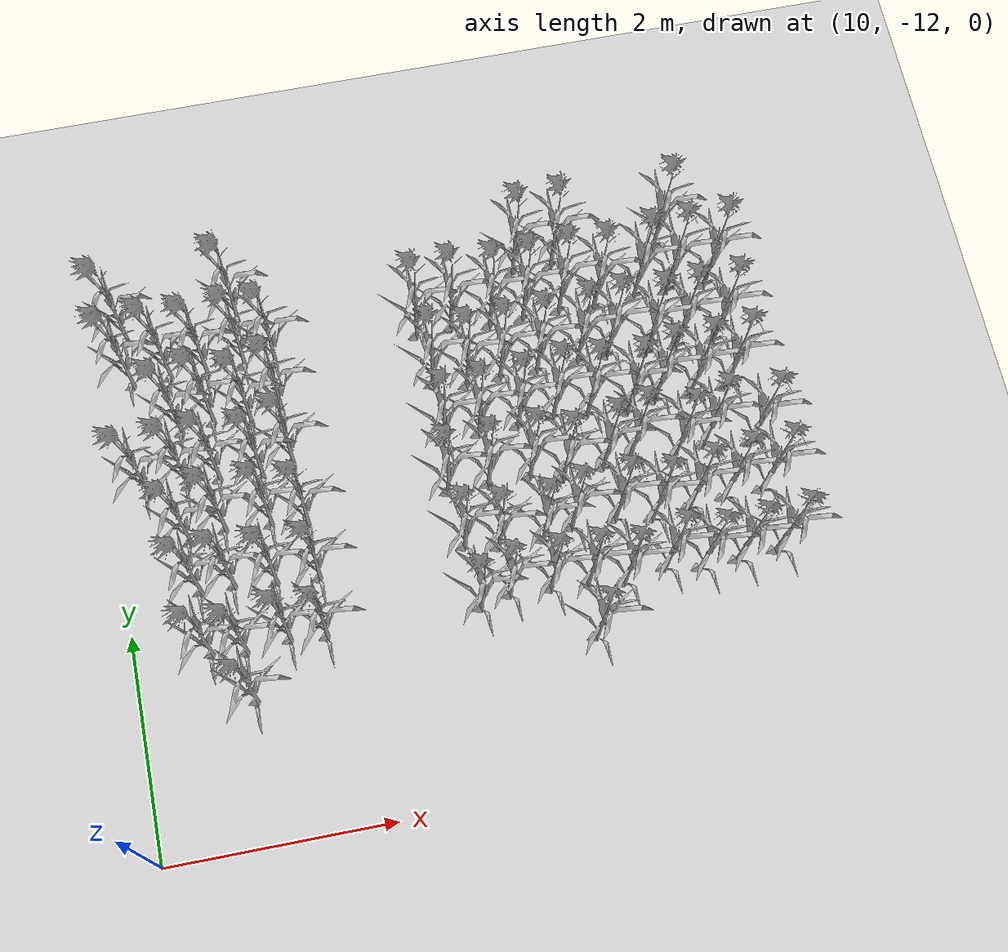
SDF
<sdf version="1.7">
 <world name="farmland_world">
  <model name="ground_plane">
   <static>1</static>
   <link name="link">
    <collision name="collision">
     <geometry><plane><normal>0 0 1</normal><size>40.0 40.0</size></plane></geometry>
     <surface><friction><ode><mu>100</mu><mu2>50</mu2></ode></friction></surface>
    </collision>
    <visual name="visual">
     <cast_shadows>0</cast_shadows>
     <geometry><plane><normal>0 0 1</normal><size>40.0 40.0</size></plane></geometry>
     <material>
      <script><uri>file://media/materials/scripts/gazebo.material</uri><name>Gazebo/Grey</name></script>
     </material>
    </visual>
   </link>
  </model>
  <model name="tree_3_400">
   <static>1</static>
   <link name="link">
    <collision name="collision">
     <geometry><mesh><uri>model://Corn_low_poly/corn.obj</uri><scale>1 1 1</scale></mesh></geometry>
     <surface><friction><ode><mu>100</mu><mu2>50</mu2></ode></friction></surface>
    </collision>
    <visual name="visual">
     <geometry><mesh><uri>model://Corn_low_poly/corn.obj</uri><scale>1 1 1</scale></mesh></geometry>
    </visual>
   </link>
   <pose>10.34264472117641 -7.221243051717082 0 0 0 0</pose>
  </model>
  <model name="tree_3_401">
   <static>1</static>
   <link name="link">
    <collision name="collision">
     <geometry><mesh><uri>model://Corn_low_poly/corn.obj</uri><scale>1 1 1</scale></mesh></geometry>
     <surface><friction><ode><mu>100</mu><mu2>50</mu2></ode></friction></surface>
    </collision>
    <visual name="visual">
     <geometry><mesh><uri>model://Corn_low_poly/corn.obj</uri><scale>1 1 1</scale></mesh></geometry>
    </visual>
   </link>
   <pose>10.338454814239373 -7.66585331338082 0 0 0 0</pose>
  </model>
  <model name="tree_3_403">
   <static>1</static>
   <link name="link">
    <collision name="collision">
     <geometry><mesh><uri>model://Corn_low_poly/corn.obj</uri><scale>1 1 1</scale></mesh></geometry>
     <surface><friction><ode><mu>100</mu><mu2>50</mu2></ode></friction></surface>
    </collision>
    <visual name="visual">
     <geometry><mesh><uri>model://Corn_low_poly/corn.obj</uri><scale>1 1 1</scale></mesh></geometry>
    </visual>
   </link>
   <pose>10.34158025443758 -8.729332318226618 0 0 0 0</pose>
  </model>
  <model name="tree_3_431">
   <static>1</static>
   <link name="link">
    <collision name="collision">
     <geometry><mesh><uri>model://Corn_low_poly/corn.obj</uri><scale>1 1 1</scale></mesh></geometry>
     <surface><friction><ode><mu>100</mu><mu2>50</mu2></ode></friction></surface>
    </collision>
    <visual name="visual">
     <geometry><mesh><uri>model://Corn_low_poly/corn.obj</uri><scale>1 1 1</scale></mesh></geometry>
    </visual>
   </link>
   <pose>10.68484244033813 -7.653272223433387 0 0 0 0</pose>
  </model>
  <model name="tree_3_432">
   <static>1</static>
   <link name="link">
    <collision name="collision">
     <geometry><mesh><uri>model://Corn_low_poly/corn.obj</uri><scale>1 1 1</scale></mesh></geometry>
     <surface><friction><ode><mu>100</mu><mu2>50</mu2></ode></friction></surface>
    </collision>
    <visual name="visual">
     <geometry><mesh><uri>model://Corn_low_poly/corn.obj</uri><scale>1 1 1</scale></mesh></geometry>
    </visual>
   </link>
   <pose>10.710874957975356 -8.20716723866626 0 0 0 0</pose>
  </model>
  <model name="tree_3_433">
   <static>1</static>
   <link name="link">
    <collision name="collision">
     <geometry><mesh><uri>model://Corn_low_poly/corn.obj</uri><scale>1 1 1</scale></mesh></geometry>
     <surface><friction><ode><mu>100</mu><mu2>50</mu2></ode></friction></surface>
    </collision>
    <visual name="visual">
     <geometry><mesh><uri>model://Corn_low_poly/corn.obj</uri><scale>1 1 1</scale></mesh></geometry>
    </visual>
   </link>
   <pose>10.697267703670128 -8.721666832337787 0 0 0 0</pose>
  </model>
  <model name="tree_3_434">
   <static>1</static>
   <link name="link">
    <collision name="collision">
     <geometry><mesh><uri>model://Corn_low_poly/corn.obj</uri><scale>1 1 1</scale></mesh></geometry>
     <surface><friction><ode><mu>100</mu><mu2>50</mu2></ode></friction></surface>
    </collision>
    <visual name="visual">
     <geometry><mesh><uri>model://Corn_low_poly/corn.obj</uri><scale>1 1 1</scale></mesh></geometry>
    </visual>
   </link>
   <pose>10.641527303943821 -9.245394690304623 0 0 0 0</pose>
  </model>
  <model name="tree_3_435">
   <static>1</static>
   <link name="link">
    <collision name="collision">
     <geometry><mesh><uri>model://Corn_low_poly/corn.obj</uri><scale>1 1 1</scale></mesh></geometry>
     <surface><friction><ode><mu>100</mu><mu2>50</mu2></ode></friction></surface>
    </collision>
    <visual name="visual">
     <geometry><mesh><uri>model://Corn_low_poly/corn.obj</uri><scale>1 1 1</scale></mesh></geometry>
    </visual>
   </link>
   <pose>10.667570356438791 -9.715934877916279 0 0 0 0</pose>
  </model>
  <model name="tree_3_436">
   <static>1</static>
   <link name="link">
    <collision name="collision">
     <geometry><mesh><uri>model://Corn_low_poly/corn.obj</uri><scale>1 1 1</scale></mesh></geometry>
     <surface><friction><ode><mu>100</mu><mu2>50</mu2></ode></friction></surface>
    </collision>
    <visual name="visual">
     <geometry><mesh><uri>model://Corn_low_poly/corn.obj</uri><scale>1 1 1</scale></mesh></geometry>
    </visual>
   </link>
   <pose>10.686186014860024 -10.279513157542569 0 0 0 0</pose>
  </model>
  <model name="tree_3_461">
   <static>1</static>
   <link name="link">
    <collision name="collision">
     <geometry><mesh><uri>model://Corn_low_poly/corn.obj</uri><scale>1 1 1</scale></mesh></geometry>
     <surface><friction><ode><mu>100</mu><mu2>50</mu2></ode></friction></surface>
    </collision>
    <visual name="visual">
     <geometry><mesh><uri>model://Corn_low_poly/corn.obj</uri><scale>1 1 1</scale></mesh></geometry>
    </visual>
   </link>
   <pose>11.018049860431471 -7.689469624449267 0 0 0 0</pose>
  </model>
  <model name="tree_3_462">
   <static>1</static>
   <link name="link">
    <collision name="collision">
     <geometry><mesh><uri>model://Corn_low_poly/corn.obj</uri><scale>1 1 1</scale></mesh></geometry>
     <surface><friction><ode><mu>100</mu><mu2>50</mu2></ode></friction></surface>
    </collision>
    <visual name="visual">
     <geometry><mesh><uri>model://Corn_low_poly/corn.obj</uri><scale>1 1 1</scale></mesh></geometry>
    </visual>
   </link>
   <pose>11.006267011523752 -8.163785673835847 0 0 0 0</pose>
  </model>
  <model name="tree_3_463">
   <static>1</static>
   <link name="link">
    <collision name="collision">
     <geometry><mesh><uri>model://Corn_low_poly/corn.obj</uri><scale>1 1 1</scale></mesh></geometry>
     <surface><friction><ode><mu>100</mu><mu2>50</mu2></ode></friction></surface>
    </collision>
    <visual name="visual">
     <geometry><mesh><uri>model://Corn_low_poly/corn.obj</uri><scale>1 1 1</scale></mesh></geometry>
    </visual>
   </link>
   <pose>10.982426069605596 -8.712588871135154 0 0 0 0</pose>
  </model>
  <model name="tree_3_464">
   <static>1</static>
   <link name="link">
    <collision name="collision">
     <geometry><mesh><uri>model://Corn_low_poly/corn.obj</uri><scale>1 1 1</scale></mesh></geometry>
     <surface><friction><ode><mu>100</mu><mu2>50</mu2></ode></friction></surface>
    </collision>
    <visual name="visual">
     <geometry><mesh><uri>model://Corn_low_poly/corn.obj</uri><scale>1 1 1</scale></mesh></geometry>
    </visual>
   </link>
   <pose>10.962684201638673 -9.192205985252677 0 0 0 0</pose>
  </model>
  <model name="tree_3_465">
   <static>1</static>
   <link name="link">
    <collision name="collision">
     <geometry><mesh><uri>model://Corn_low_poly/corn.obj</uri><scale>1 1 1</scale></mesh></geometry>
     <surface><friction><ode><mu>100</mu><mu2>50</mu2></ode></friction></surface>
    </collision>
    <visual name="visual">
     <geometry><mesh><uri>model://Corn_low_poly/corn.obj</uri><scale>1 1 1</scale></mesh></geometry>
    </visual>
   </link>
   <pose>10.963121371407512 -9.716608719569937 0 0 0 0</pose>
  </model>
  <model name="tree_3_466">
   <static>1</static>
   <link name="link">
    <collision name="collision">
     <geometry><mesh><uri>model://Corn_low_poly/corn.obj</uri><scale>1 1 1</scale></mesh></geometry>
     <surface><friction><ode><mu>100</mu><mu2>50</mu2></ode></friction></surface>
    </collision>
    <visual name="visual">
     <geometry><mesh><uri>model://Corn_low_poly/corn.obj</uri><scale>1 1 1</scale></mesh></geometry>
    </visual>
   </link>
   <pose>10.982357116105007 -10.320443931904043 0 0 0 0</pose>
  </model>
  <model name="tree_3_467">
   <static>1</static>
   <link name="link">
    <collision name="collision">
     <geometry><mesh><uri>model://Corn_low_poly/corn.obj</uri><scale>1 1 1</scale></mesh></geometry>
     <surface><friction><ode><mu>100</mu><mu2>50</mu2></ode></friction></surface>
    </collision>
    <visual name="visual">
     <geometry><mesh><uri>model://Corn_low_poly/corn.obj</uri><scale>1 1 1</scale></mesh></geometry>
    </visual>
   </link>
   <pose>11.004182899708768 -10.760204597092526 0 0 0 0</pose>
  </model>
  <model name="tree_3_490">
   <static>1</static>
   <link name="link">
    <collision name="collision">
     <geometry><mesh><uri>model://Corn_low_poly/corn.obj</uri><scale>1 1 1</scale></mesh></geometry>
     <surface><friction><ode><mu>100</mu><mu2>50</mu2></ode></friction></surface>
    </collision>
    <visual name="visual">
     <geometry><mesh><uri>model://Corn_low_poly/corn.obj</uri><scale>1 1 1</scale></mesh></geometry>
    </visual>
   </link>
   <pose>11.36624414504541 -7.196506146457356 0 0 0 0</pose>
  </model>
  <model name="tree_3_491">
   <static>1</static>
   <link name="link">
    <collision name="collision">
     <geometry><mesh><uri>model://Corn_low_poly/corn.obj</uri><scale>1 1 1</scale></mesh></geometry>
     <surface><friction><ode><mu>100</mu><mu2>50</mu2></ode></friction></surface>
    </collision>
    <visual name="visual">
     <geometry><mesh><uri>model://Corn_low_poly/corn.obj</uri><scale>1 1 1</scale></mesh></geometry>
    </visual>
   </link>
   <pose>11.364293158134222 -7.6664493016286155 0 0 0 0</pose>
  </model>
  <model name="tree_3_492">
   <static>1</static>
   <link name="link">
    <collision name="collision">
     <geometry><mesh><uri>model://Corn_low_poly/corn.obj</uri><scale>1 1 1</scale></mesh></geometry>
     <surface><friction><ode><mu>100</mu><mu2>50</mu2></ode></friction></surface>
    </collision>
    <visual name="visual">
     <geometry><mesh><uri>model://Corn_low_poly/corn.obj</uri><scale>1 1 1</scale></mesh></geometry>
    </visual>
   </link>
   <pose>11.34295017642501 -8.246571486949625 0 0 0 0</pose>
  </model>
  <model name="tree_3_493">
   <static>1</static>
   <link name="link">
    <collision name="collision">
     <geometry><mesh><uri>model://Corn_low_poly/corn.obj</uri><scale>1 1 1</scale></mesh></geometry>
     <surface><friction><ode><mu>100</mu><mu2>50</mu2></ode></friction></surface>
    </collision>
    <visual name="visual">
     <geometry><mesh><uri>model://Corn_low_poly/corn.obj</uri><scale>1 1 1</scale></mesh></geometry>
    </visual>
   </link>
   <pose>11.364372571572034 -8.768462655058821 0 0 0 0</pose>
  </model>
  <model name="tree_3_494">
   <static>1</static>
   <link name="link">
    <collision name="collision">
     <geometry><mesh><uri>model://Corn_low_poly/corn.obj</uri><scale>1 1 1</scale></mesh></geometry>
     <surface><friction><ode><mu>100</mu><mu2>50</mu2></ode></friction></surface>
    </collision>
    <visual name="visual">
     <geometry><mesh><uri>model://Corn_low_poly/corn.obj</uri><scale>1 1 1</scale></mesh></geometry>
    </visual>
   </link>
   <pose>11.370045885801959 -9.220711626090209 0 0 0 0</pose>
  </model>
  <model name="tree_3_495">
   <static>1</static>
   <link name="link">
    <collision name="collision">
     <geometry><mesh><uri>model://Corn_low_poly/corn.obj</uri><scale>1 1 1</scale></mesh></geometry>
     <surface><friction><ode><mu>100</mu><mu2>50</mu2></ode></friction></surface>
    </collision>
    <visual name="visual">
     <geometry><mesh><uri>model://Corn_low_poly/corn.obj</uri><scale>1 1 1</scale></mesh></geometry>
    </visual>
   </link>
   <pose>11.332500728271157 -9.758508030954355 0 0 0 0</pose>
  </model>
  <model name="tree_3_496">
   <static>1</static>
   <link name="link">
    <collision name="collision">
     <geometry><mesh><uri>model://Corn_low_poly/corn.obj</uri><scale>1 1 1</scale></mesh></geometry>
     <surface><friction><ode><mu>100</mu><mu2>50</mu2></ode></friction></surface>
    </collision>
    <visual name="visual">
     <geometry><mesh><uri>model://Corn_low_poly/corn.obj</uri><scale>1 1 1</scale></mesh></geometry>
    </visual>
   </link>
   <pose>11.367734395144145 -10.282857870187813 0 0 0 0</pose>
  </model>
  <model name="tree_3_521">
   <static>1</static>
   <link name="link">
    <collision name="collision">
     <geometry><mesh><uri>model://Corn_low_poly/corn.obj</uri><scale>1 1 1</scale></mesh></geometry>
     <surface><friction><ode><mu>100</mu><mu2>50</mu2></ode></friction></surface>
    </collision>
    <visual name="visual">
     <geometry><mesh><uri>model://Corn_low_poly/corn.obj</uri><scale>1 1 1</scale></mesh></geometry>
    </visual>
   </link>
   <pose>11.64435746285812 -7.693616378816136 0 0 0 0</pose>
  </model>
  <model name="tree_3_522">
   <static>1</static>
   <link name="link">
    <collision name="collision">
     <geometry><mesh><uri>model://Corn_low_poly/corn.obj</uri><scale>1 1 1</scale></mesh></geometry>
     <surface><friction><ode><mu>100</mu><mu2>50</mu2></ode></friction></surface>
    </collision>
    <visual name="visual">
     <geometry><mesh><uri>model://Corn_low_poly/corn.obj</uri><scale>1 1 1</scale></mesh></geometry>
    </visual>
   </link>
   <pose>11.627909985855867 -8.173665759159391 0 0 0 0</pose>
  </model>
  <model name="tree_3_523">
   <static>1</static>
   <link name="link">
    <collision name="collision">
     <geometry><mesh><uri>model://Corn_low_poly/corn.obj</uri><scale>1 1 1</scale></mesh></geometry>
     <surface><friction><ode><mu>100</mu><mu2>50</mu2></ode></friction></surface>
    </collision>
    <visual name="visual">
     <geometry><mesh><uri>model://Corn_low_poly/corn.obj</uri><scale>1 1 1</scale></mesh></geometry>
    </visual>
   </link>
   <pose>11.64689395640152 -8.678714293904482 0 0 0 0</pose>
  </model>
  <model name="tree_3_524">
   <static>1</static>
   <link name="link">
    <collision name="collision">
     <geometry><mesh><uri>model://Corn_low_poly/corn.obj</uri><scale>1 1 1</scale></mesh></geometry>
     <surface><friction><ode><mu>100</mu><mu2>50</mu2></ode></friction></surface>
    </collision>
    <visual name="visual">
     <geometry><mesh><uri>model://Corn_low_poly/corn.obj</uri><scale>1 1 1</scale></mesh></geometry>
    </visual>
   </link>
   <pose>11.68829046653136 -9.277292054085517 0 0 0 0</pose>
  </model>
  <model name="tree_3_525">
   <static>1</static>
   <link name="link">
    <collision name="collision">
     <geometry><mesh><uri>model://Corn_low_poly/corn.obj</uri><scale>1 1 1</scale></mesh></geometry>
     <surface><friction><ode><mu>100</mu><mu2>50</mu2></ode></friction></surface>
    </collision>
    <visual name="visual">
     <geometry><mesh><uri>model://Corn_low_poly/corn.obj</uri><scale>1 1 1</scale></mesh></geometry>
    </visual>
   </link>
   <pose>11.707902461020238 -9.784325769079132 0 0 0 0</pose>
  </model>
  <model name="tree_3_526">
   <static>1</static>
   <link name="link">
    <collision name="collision">
     <geometry><mesh><uri>model://Corn_low_poly/corn.obj</uri><scale>1 1 1</scale></mesh></geometry>
     <surface><friction><ode><mu>100</mu><mu2>50</mu2></ode></friction></surface>
    </collision>
    <visual name="visual">
     <geometry><mesh><uri>model://Corn_low_poly/corn.obj</uri><scale>1 1 1</scale></mesh></geometry>
    </visual>
   </link>
   <pose>11.68536356628521 -10.315217088517244 0 0 0 0</pose>
  </model>
  <model name="tree_3_551">
   <static>1</static>
   <link name="link">
    <collision name="collision">
     <geometry><mesh><uri>model://Corn_low_poly/corn.obj</uri><scale>1 1 1</scale></mesh></geometry>
     <surface><friction><ode><mu>100</mu><mu2>50</mu2></ode></friction></surface>
    </collision>
    <visual name="visual">
     <geometry><mesh><uri>model://Corn_low_poly/corn.obj</uri><scale>1 1 1</scale></mesh></geometry>
    </visual>
   </link>
   <pose>12.964564481734902 -7.667422720420422 0 0 0 0</pose>
  </model>
  <model name="tree_3_552">
   <static>1</static>
   <link name="link">
    <collision name="collision">
     <geometry><mesh><uri>model://Corn_low_poly/corn.obj</uri><scale>1 1 1</scale></mesh></geometry>
     <surface><friction><ode><mu>100</mu><mu2>50</mu2></ode></friction></surface>
    </collision>
    <visual name="visual">
     <geometry><mesh><uri>model://Corn_low_poly/corn.obj</uri><scale>1 1 1</scale></mesh></geometry>
    </visual>
   </link>
   <pose>13.017679959994837 -8.17138943899508 0 0 0 0</pose>
  </model>
  <model name="tree_3_553">
   <static>1</static>
   <link name="link">
    <collision name="collision">
     <geometry><mesh><uri>model://Corn_low_poly/corn.obj</uri><scale>1 1 1</scale></mesh></geometry>
     <surface><friction><ode><mu>100</mu><mu2>50</mu2></ode></friction></surface>
    </collision>
    <visual name="visual">
     <geometry><mesh><uri>model://Corn_low_poly/corn.obj</uri><scale>1 1 1</scale></mesh></geometry>
    </visual>
   </link>
   <pose>13.016828496132378 -8.73689489399794 0 0 0 0</pose>
  </model>
  <model name="tree_3_554">
   <static>1</static>
   <link name="link">
    <collision name="collision">
     <geometry><mesh><uri>model://Corn_low_poly/corn.obj</uri><scale>1 1 1</scale></mesh></geometry>
     <surface><friction><ode><mu>100</mu><mu2>50</mu2></ode></friction></surface>
    </collision>
    <visual name="visual">
     <geometry><mesh><uri>model://Corn_low_poly/corn.obj</uri><scale>1 1 1</scale></mesh></geometry>
    </visual>
   </link>
   <pose>12.96048467094122 -9.213028866033435 0 0 0 0</pose>
  </model>
  <model name="tree_3_555">
   <static>1</static>
   <link name="link">
    <collision name="collision">
     <geometry><mesh><uri>model://Corn_low_poly/corn.obj</uri><scale>1 1 1</scale></mesh></geometry>
     <surface><friction><ode><mu>100</mu><mu2>50</mu2></ode></friction></surface>
    </collision>
    <visual name="visual">
     <geometry><mesh><uri>model://Corn_low_poly/corn.obj</uri><scale>1 1 1</scale></mesh></geometry>
    </visual>
   </link>
   <pose>13.008731725089232 -9.739149671609507 0 0 0 0</pose>
  </model>
  <model name="tree_3_556">
   <static>1</static>
   <link name="link">
    <collision name="collision">
     <geometry><mesh><uri>model://Corn_low_poly/corn.obj</uri><scale>1 1 1</scale></mesh></geometry>
     <surface><friction><ode><mu>100</mu><mu2>50</mu2></ode></friction></surface>
    </collision>
    <visual name="visual">
     <geometry><mesh><uri>model://Corn_low_poly/corn.obj</uri><scale>1 1 1</scale></mesh></geometry>
    </visual>
   </link>
   <pose>13.042674908653852 -10.31338856702868 0 0 0 0</pose>
  </model>
  <model name="tree_3_581">
   <static>1</static>
   <link name="link">
    <collision name="collision">
     <geometry><mesh><uri>model://Corn_low_poly/corn.obj</uri><scale>1 1 1</scale></mesh></geometry>
     <surface><friction><ode><mu>100</mu><mu2>50</mu2></ode></friction></surface>
    </collision>
    <visual name="visual">
     <geometry><mesh><uri>model://Corn_low_poly/corn.obj</uri><scale>1 1 1</scale></mesh></geometry>
    </visual>
   </link>
   <pose>13.290247540325225 -7.6526682942034565 0 0 0 0</pose>
  </model>
  <model name="tree_3_582">
   <static>1</static>
   <link name="link">
    <collision name="collision">
     <geometry><mesh><uri>model://Corn_low_poly/corn.obj</uri><scale>1 1 1</scale></mesh></geometry>
     <surface><friction><ode><mu>100</mu><mu2>50</mu2></ode></friction></surface>
    </collision>
    <visual name="visual">
     <geometry><mesh><uri>model://Corn_low_poly/corn.obj</uri><scale>1 1 1</scale></mesh></geometry>
    </visual>
   </link>
   <pose>13.323938945844505 -8.238764099997011 0 0 0 0</pose>
  </model>
  <model name="tree_3_583">
   <static>1</static>
   <link name="link">
    <collision name="collision">
     <geometry><mesh><uri>model://Corn_low_poly/corn.obj</uri><scale>1 1 1</scale></mesh></geometry>
     <surface><friction><ode><mu>100</mu><mu2>50</mu2></ode></friction></surface>
    </collision>
    <visual name="visual">
     <geometry><mesh><uri>model://Corn_low_poly/corn.obj</uri><scale>1 1 1</scale></mesh></geometry>
    </visual>
   </link>
   <pose>13.338754682785858 -8.724260765500494 0 0 0 0</pose>
  </model>
  <model name="tree_3_584">
   <static>1</static>
   <link name="link">
    <collision name="collision">
     <geometry><mesh><uri>model://Corn_low_poly/corn.obj</uri><scale>1 1 1</scale></mesh></geometry>
     <surface><friction><ode><mu>100</mu><mu2>50</mu2></ode></friction></surface>
    </collision>
    <visual name="visual">
     <geometry><mesh><uri>model://Corn_low_poly/corn.obj</uri><scale>1 1 1</scale></mesh></geometry>
    </visual>
   </link>
   <pose>13.327162672157636 -9.208893045606827 0 0 0 0</pose>
  </model>
  <model name="tree_3_585">
   <static>1</static>
   <link name="link">
    <collision name="collision">
     <geometry><mesh><uri>model://Corn_low_poly/corn.obj</uri><scale>1 1 1</scale></mesh></geometry>
     <surface><friction><ode><mu>100</mu><mu2>50</mu2></ode></friction></surface>
    </collision>
    <visual name="visual">
     <geometry><mesh><uri>model://Corn_low_poly/corn.obj</uri><scale>1 1 1</scale></mesh></geometry>
    </visual>
   </link>
   <pose>13.301988986498737 -9.80278750898337 0 0 0 0</pose>
  </model>
  <model name="tree_3_586">
   <static>1</static>
   <link name="link">
    <collision name="collision">
     <geometry><mesh><uri>model://Corn_low_poly/corn.obj</uri><scale>1 1 1</scale></mesh></geometry>
     <surface><friction><ode><mu>100</mu><mu2>50</mu2></ode></friction></surface>
    </collision>
    <visual name="visual">
     <geometry><mesh><uri>model://Corn_low_poly/corn.obj</uri><scale>1 1 1</scale></mesh></geometry>
    </visual>
   </link>
   <pose>13.31198597607421 -10.245694360863732 0 0 0 0</pose>
  </model>
  <model name="tree_3_611">
   <static>1</static>
   <link name="link">
    <collision name="collision">
     <geometry><mesh><uri>model://Corn_low_poly/corn.obj</uri><scale>1 1 1</scale></mesh></geometry>
     <surface><friction><ode><mu>100</mu><mu2>50</mu2></ode></friction></surface>
    </collision>
    <visual name="visual">
     <geometry><mesh><uri>model://Corn_low_poly/corn.obj</uri><scale>1 1 1</scale></mesh></geometry>
    </visual>
   </link>
   <pose>13.646250896247773 -7.694283359344921 0 0 0 0</pose>
  </model>
  <model name="tree_3_612">
   <static>1</static>
   <link name="link">
    <collision name="collision">
     <geometry><mesh><uri>model://Corn_low_poly/corn.obj</uri><scale>1 1 1</scale></mesh></geometry>
     <surface><friction><ode><mu>100</mu><mu2>50</mu2></ode></friction></surface>
    </collision>
    <visual name="visual">
     <geometry><mesh><uri>model://Corn_low_poly/corn.obj</uri><scale>1 1 1</scale></mesh></geometry>
    </visual>
   </link>
   <pose>13.638435416798966 -8.219299226513263 0 0 0 0</pose>
  </model>
  <model name="tree_3_613">
   <static>1</static>
   <link name="link">
    <collision name="collision">
     <geometry><mesh><uri>model://Corn_low_poly/corn.obj</uri><scale>1 1 1</scale></mesh></geometry>
     <surface><friction><ode><mu>100</mu><mu2>50</mu2></ode></friction></surface>
    </collision>
    <visual name="visual">
     <geometry><mesh><uri>model://Corn_low_poly/corn.obj</uri><scale>1 1 1</scale></mesh></geometry>
    </visual>
   </link>
   <pose>13.701128399210944 -8.715760375651206 0 0 0 0</pose>
  </model>
  <model name="tree_3_614">
   <static>1</static>
   <link name="link">
    <collision name="collision">
     <geometry><mesh><uri>model://Corn_low_poly/corn.obj</uri><scale>1 1 1</scale></mesh></geometry>
     <surface><friction><ode><mu>100</mu><mu2>50</mu2></ode></friction></surface>
    </collision>
    <visual name="visual">
     <geometry><mesh><uri>model://Corn_low_poly/corn.obj</uri><scale>1 1 1</scale></mesh></geometry>
    </visual>
   </link>
   <pose>13.710745441863676 -9.20535531502973 0 0 0 0</pose>
  </model>
  <model name="tree_3_615">
   <static>1</static>
   <link name="link">
    <collision name="collision">
     <geometry><mesh><uri>model://Corn_low_poly/corn.obj</uri><scale>1 1 1</scale></mesh></geometry>
     <surface><friction><ode><mu>100</mu><mu2>50</mu2></ode></friction></surface>
    </collision>
    <visual name="visual">
     <geometry><mesh><uri>model://Corn_low_poly/corn.obj</uri><scale>1 1 1</scale></mesh></geometry>
    </visual>
   </link>
   <pose>13.704411846305241 -9.805895327092637 0 0 0 0</pose>
  </model>
  <model name="tree_3_616">
   <static>1</static>
   <link name="link">
    <collision name="collision">
     <geometry><mesh><uri>model://Corn_low_poly/corn.obj</uri><scale>1 1 1</scale></mesh></geometry>
     <surface><friction><ode><mu>100</mu><mu2>50</mu2></ode></friction></surface>
    </collision>
    <visual name="visual">
     <geometry><mesh><uri>model://Corn_low_poly/corn.obj</uri><scale>1 1 1</scale></mesh></geometry>
    </visual>
   </link>
   <pose>13.675825442952334 -10.260998069643792 0 0 0 0</pose>
  </model>
  <model name="tree_3_640">
   <static>1</static>
   <link name="link">
    <collision name="collision">
     <geometry><mesh><uri>model://Corn_low_poly/corn.obj</uri><scale>1 1 1</scale></mesh></geometry>
     <surface><friction><ode><mu>100</mu><mu2>50</mu2></ode></friction></surface>
    </collision>
    <visual name="visual">
     <geometry><mesh><uri>model://Corn_low_poly/corn.obj</uri><scale>1 1 1</scale></mesh></geometry>
    </visual>
   </link>
   <pose>13.959347089761716 -7.210024211740098 0 0 0 0</pose>
  </model>
  <model name="tree_3_641">
   <static>1</static>
   <link name="link">
    <collision name="collision">
     <geometry><mesh><uri>model://Corn_low_poly/corn.obj</uri><scale>1 1 1</scale></mesh></geometry>
     <surface><friction><ode><mu>100</mu><mu2>50</mu2></ode></friction></surface>
    </collision>
    <visual name="visual">
     <geometry><mesh><uri>model://Corn_low_poly/corn.obj</uri><scale>1 1 1</scale></mesh></geometry>
    </visual>
   </link>
   <pose>13.95903469012038 -7.686479464057294 0 0 0 0</pose>
  </model>
  <model name="tree_3_642">
   <static>1</static>
   <link name="link">
    <collision name="collision">
     <geometry><mesh><uri>model://Corn_low_poly/corn.obj</uri><scale>1 1 1</scale></mesh></geometry>
     <surface><friction><ode><mu>100</mu><mu2>50</mu2></ode></friction></surface>
    </collision>
    <visual name="visual">
     <geometry><mesh><uri>model://Corn_low_poly/corn.obj</uri><scale>1 1 1</scale></mesh></geometry>
    </visual>
   </link>
   <pose>13.981109976076516 -8.218290914910323 0 0 0 0</pose>
  </model>
  <model name="tree_3_643">
   <static>1</static>
   <link name="link">
    <collision name="collision">
     <geometry><mesh><uri>model://Corn_low_poly/corn.obj</uri><scale>1 1 1</scale></mesh></geometry>
     <surface><friction><ode><mu>100</mu><mu2>50</mu2></ode></friction></surface>
    </collision>
    <visual name="visual">
     <geometry><mesh><uri>model://Corn_low_poly/corn.obj</uri><scale>1 1 1</scale></mesh></geometry>
    </visual>
   </link>
   <pose>14.035019319053362 -8.684935278517392 0 0 0 0</pose>
  </model>
  <model name="tree_3_644">
   <static>1</static>
   <link name="link">
    <collision name="collision">
     <geometry><mesh><uri>model://Corn_low_poly/corn.obj</uri><scale>1 1 1</scale></mesh></geometry>
     <surface><friction><ode><mu>100</mu><mu2>50</mu2></ode></friction></surface>
    </collision>
    <visual name="visual">
     <geometry><mesh><uri>model://Corn_low_poly/corn.obj</uri><scale>1 1 1</scale></mesh></geometry>
    </visual>
   </link>
   <pose>13.996312655384688 -9.287751214889113 0 0 0 0</pose>
  </model>
  <model name="tree_3_645">
   <static>1</static>
   <link name="link">
    <collision name="collision">
     <geometry><mesh><uri>model://Corn_low_poly/corn.obj</uri><scale>1 1 1</scale></mesh></geometry>
     <surface><friction><ode><mu>100</mu><mu2>50</mu2></ode></friction></surface>
    </collision>
    <visual name="visual">
     <geometry><mesh><uri>model://Corn_low_poly/corn.obj</uri><scale>1 1 1</scale></mesh></geometry>
    </visual>
   </link>
   <pose>13.972566156101129 -9.745649499598892 0 0 0 0</pose>
  </model>
  <model name="tree_3_646">
   <static>1</static>
   <link name="link">
    <collision name="collision">
     <geometry><mesh><uri>model://Corn_low_poly/corn.obj</uri><scale>1 1 1</scale></mesh></geometry>
     <surface><friction><ode><mu>100</mu><mu2>50</mu2></ode></friction></surface>
    </collision>
    <visual name="visual">
     <geometry><mesh><uri>model://Corn_low_poly/corn.obj</uri><scale>1 1 1</scale></mesh></geometry>
    </visual>
   </link>
   <pose>14.004347488269842 -10.278903498000185 0 0 0 0</pose>
  </model>
  <model name="tree_3_647">
   <static>1</static>
   <link name="link">
    <collision name="collision">
     <geometry><mesh><uri>model://Corn_low_poly/corn.obj</uri><scale>1 1 1</scale></mesh></geometry>
     <surface><friction><ode><mu>100</mu><mu2>50</mu2></ode></friction></surface>
    </collision>
    <visual name="visual">
     <geometry><mesh><uri>model://Corn_low_poly/corn.obj</uri><scale>1 1 1</scale></mesh></geometry>
    </visual>
   </link>
   <pose>13.973767653225972 -10.754216960358498 0 0 0 0</pose>
  </model>
  <model name="tree_3_670">
   <static>1</static>
   <link name="link">
    <collision name="collision">
     <geometry><mesh><uri>model://Corn_low_poly/corn.obj</uri><scale>1 1 1</scale></mesh></geometry>
     <surface><friction><ode><mu>100</mu><mu2>50</mu2></ode></friction></surface>
    </collision>
    <visual name="visual">
     <geometry><mesh><uri>model://Corn_low_poly/corn.obj</uri><scale>1 1 1</scale></mesh></geometry>
    </visual>
   </link>
   <pose>14.324815084923587 -7.207278004294882 0 0 0 0</pose>
  </model>
  <model name="tree_3_671">
   <static>1</static>
   <link name="link">
    <collision name="collision">
     <geometry><mesh><uri>model://Corn_low_poly/corn.obj</uri><scale>1 1 1</scale></mesh></geometry>
     <surface><friction><ode><mu>100</mu><mu2>50</mu2></ode></friction></surface>
    </collision>
    <visual name="visual">
     <geometry><mesh><uri>model://Corn_low_poly/corn.obj</uri><scale>1 1 1</scale></mesh></geometry>
    </visual>
   </link>
   <pose>14.303166019476693 -7.669747987099972 0 0 0 0</pose>
  </model>
  <model name="tree_3_672">
   <static>1</static>
   <link name="link">
    <collision name="collision">
     <geometry><mesh><uri>model://Corn_low_poly/corn.obj</uri><scale>1 1 1</scale></mesh></geometry>
     <surface><friction><ode><mu>100</mu><mu2>50</mu2></ode></friction></surface>
    </collision>
    <visual name="visual">
     <geometry><mesh><uri>model://Corn_low_poly/corn.obj</uri><scale>1 1 1</scale></mesh></geometry>
    </visual>
   </link>
   <pose>14.363687716419742 -8.200330085312922 0 0 0 0</pose>
  </model>
  <model name="tree_3_673">
   <static>1</static>
   <link name="link">
    <collision name="collision">
     <geometry><mesh><uri>model://Corn_low_poly/corn.obj</uri><scale>1 1 1</scale></mesh></geometry>
     <surface><friction><ode><mu>100</mu><mu2>50</mu2></ode></friction></surface>
    </collision>
    <visual name="visual">
     <geometry><mesh><uri>model://Corn_low_poly/corn.obj</uri><scale>1 1 1</scale></mesh></geometry>
    </visual>
   </link>
   <pose>14.343422140808574 -8.723133120603272 0 0 0 0</pose>
  </model>
  <model name="tree_3_674">
   <static>1</static>
   <link name="link">
    <collision name="collision">
     <geometry><mesh><uri>model://Corn_low_poly/corn.obj</uri><scale>1 1 1</scale></mesh></geometry>
     <surface><friction><ode><mu>100</mu><mu2>50</mu2></ode></friction></surface>
    </collision>
    <visual name="visual">
     <geometry><mesh><uri>model://Corn_low_poly/corn.obj</uri><scale>1 1 1</scale></mesh></geometry>
    </visual>
   </link>
   <pose>14.371612547708345 -9.248051012577301 0 0 0 0</pose>
  </model>
  <model name="tree_3_675">
   <static>1</static>
   <link name="link">
    <collision name="collision">
     <geometry><mesh><uri>model://Corn_low_poly/corn.obj</uri><scale>1 1 1</scale></mesh></geometry>
     <surface><friction><ode><mu>100</mu><mu2>50</mu2></ode></friction></surface>
    </collision>
    <visual name="visual">
     <geometry><mesh><uri>model://Corn_low_poly/corn.obj</uri><scale>1 1 1</scale></mesh></geometry>
    </visual>
   </link>
   <pose>14.369406891385546 -9.741943633842908 0 0 0 0</pose>
  </model>
  <model name="tree_3_676">
   <static>1</static>
   <link name="link">
    <collision name="collision">
     <geometry><mesh><uri>model://Corn_low_poly/corn.obj</uri><scale>1 1 1</scale></mesh></geometry>
     <surface><friction><ode><mu>100</mu><mu2>50</mu2></ode></friction></surface>
    </collision>
    <visual name="visual">
     <geometry><mesh><uri>model://Corn_low_poly/corn.obj</uri><scale>1 1 1</scale></mesh></geometry>
    </visual>
   </link>
   <pose>14.317653929918178 -10.325140877377999 0 0 0 0</pose>
  </model>
  <model name="tree_3_701">
   <static>1</static>
   <link name="link">
    <collision name="collision">
     <geometry><mesh><uri>model://Corn_low_poly/corn.obj</uri><scale>1 1 1</scale></mesh></geometry>
     <surface><friction><ode><mu>100</mu><mu2>50</mu2></ode></friction></surface>
    </collision>
    <visual name="visual">
     <geometry><mesh><uri>model://Corn_low_poly/corn.obj</uri><scale>1 1 1</scale></mesh></geometry>
    </visual>
   </link>
   <pose>14.6254849211013 -7.701689486231858 0 0 0 0</pose>
  </model>
  <model name="tree_3_702">
   <static>1</static>
   <link name="link">
    <collision name="collision">
     <geometry><mesh><uri>model://Corn_low_poly/corn.obj</uri><scale>1 1 1</scale></mesh></geometry>
     <surface><friction><ode><mu>100</mu><mu2>50</mu2></ode></friction></surface>
    </collision>
    <visual name="visual">
     <geometry><mesh><uri>model://Corn_low_poly/corn.obj</uri><scale>1 1 1</scale></mesh></geometry>
    </visual>
   </link>
   <pose>14.643309078109443 -8.189165304424165 0 0 0 0</pose>
  </model>
  <model name="tree_3_703">
   <static>1</static>
   <link name="link">
    <collision name="collision">
     <geometry><mesh><uri>model://Corn_low_poly/corn.obj</uri><scale>1 1 1</scale></mesh></geometry>
     <surface><friction><ode><mu>100</mu><mu2>50</mu2></ode></friction></surface>
    </collision>
    <visual name="visual">
     <geometry><mesh><uri>model://Corn_low_poly/corn.obj</uri><scale>1 1 1</scale></mesh></geometry>
    </visual>
   </link>
   <pose>14.705252627197622 -8.76944496903626 0 0 0 0</pose>
  </model>
  <model name="tree_3_704">
   <static>1</static>
   <link name="link">
    <collision name="collision">
     <geometry><mesh><uri>model://Corn_low_poly/corn.obj</uri><scale>1 1 1</scale></mesh></geometry>
     <surface><friction><ode><mu>100</mu><mu2>50</mu2></ode></friction></surface>
    </collision>
    <visual name="visual">
     <geometry><mesh><uri>model://Corn_low_poly/corn.obj</uri><scale>1 1 1</scale></mesh></geometry>
    </visual>
   </link>
   <pose>14.631808132590864 -9.193819276181122 0 0 0 0</pose>
  </model>
  <model name="tree_3_705">
   <static>1</static>
   <link name="link">
    <collision name="collision">
     <geometry><mesh><uri>model://Corn_low_poly/corn.obj</uri><scale>1 1 1</scale></mesh></geometry>
     <surface><friction><ode><mu>100</mu><mu2>50</mu2></ode></friction></surface>
    </collision>
    <visual name="visual">
     <geometry><mesh><uri>model://Corn_low_poly/corn.obj</uri><scale>1 1 1</scale></mesh></geometry>
    </visual>
   </link>
   <pose>14.69201118959348 -9.801045276245647 0 0 0 0</pose>
  </model>
  <model name="tree_3_706">
   <static>1</static>
   <link name="link">
    <collision name="collision">
     <geometry><mesh><uri>model://Corn_low_poly/corn.obj</uri><scale>1 1 1</scale></mesh></geometry>
     <surface><friction><ode><mu>100</mu><mu2>50</mu2></ode></friction></surface>
    </collision>
    <visual name="visual">
     <geometry><mesh><uri>model://Corn_low_poly/corn.obj</uri><scale>1 1 1</scale></mesh></geometry>
    </visual>
   </link>
   <pose>14.695761749888739 -10.263173482153316 0 0 0 0</pose>
  </model>
  <model name="tree_3_731">
   <static>1</static>
   <link name="link">
    <collision name="collision">
     <geometry><mesh><uri>model://Corn_low_poly/corn.obj</uri><scale>1 1 1</scale></mesh></geometry>
     <surface><friction><ode><mu>100</mu><mu2>50</mu2></ode></friction></surface>
    </collision>
    <visual name="visual">
     <geometry><mesh><uri>model://Corn_low_poly/corn.obj</uri><scale>1 1 1</scale></mesh></geometry>
    </visual>
   </link>
   <pose>15.020034880440726 -7.657895676652231 0 0 0 0</pose>
  </model>
  <model name="tree_3_732">
   <static>1</static>
   <link name="link">
    <collision name="collision">
     <geometry><mesh><uri>model://Corn_low_poly/corn.obj</uri><scale>1 1 1</scale></mesh></geometry>
     <surface><friction><ode><mu>100</mu><mu2>50</mu2></ode></friction></surface>
    </collision>
    <visual name="visual">
     <geometry><mesh><uri>model://Corn_low_poly/corn.obj</uri><scale>1 1 1</scale></mesh></geometry>
    </visual>
   </link>
   <pose>15.001682037390697 -8.234469065620766 0 0 0 0</pose>
  </model>
  <model name="tree_3_733">
   <static>1</static>
   <link name="link">
    <collision name="collision">
     <geometry><mesh><uri>model://Corn_low_poly/corn.obj</uri><scale>1 1 1</scale></mesh></geometry>
     <surface><friction><ode><mu>100</mu><mu2>50</mu2></ode></friction></surface>
    </collision>
    <visual name="visual">
     <geometry><mesh><uri>model://Corn_low_poly/corn.obj</uri><scale>1 1 1</scale></mesh></geometry>
    </visual>
   </link>
   <pose>14.971717651457576 -8.705937077551068 0 0 0 0</pose>
  </model>
  <model name="tree_3_734">
   <static>1</static>
   <link name="link">
    <collision name="collision">
     <geometry><mesh><uri>model://Corn_low_poly/corn.obj</uri><scale>1 1 1</scale></mesh></geometry>
     <surface><friction><ode><mu>100</mu><mu2>50</mu2></ode></friction></surface>
    </collision>
    <visual name="visual">
     <geometry><mesh><uri>model://Corn_low_poly/corn.obj</uri><scale>1 1 1</scale></mesh></geometry>
    </visual>
   </link>
   <pose>15.00908423870586 -9.288289209991945 0 0 0 0</pose>
  </model>
  <model name="tree_3_735">
   <static>1</static>
   <link name="link">
    <collision name="collision">
     <geometry><mesh><uri>model://Corn_low_poly/corn.obj</uri><scale>1 1 1</scale></mesh></geometry>
     <surface><friction><ode><mu>100</mu><mu2>50</mu2></ode></friction></surface>
    </collision>
    <visual name="visual">
     <geometry><mesh><uri>model://Corn_low_poly/corn.obj</uri><scale>1 1 1</scale></mesh></geometry>
    </visual>
   </link>
   <pose>15.03703869759344 -9.758004155148072 0 0 0 0</pose>
  </model>
  <model name="tree_3_736">
   <static>1</static>
   <link name="link">
    <collision name="collision">
     <geometry><mesh><uri>model://Corn_low_poly/corn.obj</uri><scale>1 1 1</scale></mesh></geometry>
     <surface><friction><ode><mu>100</mu><mu2>50</mu2></ode></friction></surface>
    </collision>
    <visual name="visual">
     <geometry><mesh><uri>model://Corn_low_poly/corn.obj</uri><scale>1 1 1</scale></mesh></geometry>
    </visual>
   </link>
   <pose>15.003054285340069 -10.320838514629283 0 0 0 0</pose>
  </model>
  <model name="tree_3_760">
   <static>1</static>
   <link name="link">
    <collision name="collision">
     <geometry><mesh><uri>model://Corn_low_poly/corn.obj</uri><scale>1 1 1</scale></mesh></geometry>
     <surface><friction><ode><mu>100</mu><mu2>50</mu2></ode></friction></surface>
    </collision>
    <visual name="visual">
     <geometry><mesh><uri>model://Corn_low_poly/corn.obj</uri><scale>1 1 1</scale></mesh></geometry>
    </visual>
   </link>
   <pose>15.3084340559439 -7.2041487970992595 0 0 0 0</pose>
  </model>
  <model name="tree_3_761">
   <static>1</static>
   <link name="link">
    <collision name="collision">
     <geometry><mesh><uri>model://Corn_low_poly/corn.obj</uri><scale>1 1 1</scale></mesh></geometry>
     <surface><friction><ode><mu>100</mu><mu2>50</mu2></ode></friction></surface>
    </collision>
    <visual name="visual">
     <geometry><mesh><uri>model://Corn_low_poly/corn.obj</uri><scale>1 1 1</scale></mesh></geometry>
    </visual>
   </link>
   <pose>15.333795816436307 -7.655075912932576 0 0 0 0</pose>
  </model>
  <model name="tree_3_762">
   <static>1</static>
   <link name="link">
    <collision name="collision">
     <geometry><mesh><uri>model://Corn_low_poly/corn.obj</uri><scale>1 1 1</scale></mesh></geometry>
     <surface><friction><ode><mu>100</mu><mu2>50</mu2></ode></friction></surface>
    </collision>
    <visual name="visual">
     <geometry><mesh><uri>model://Corn_low_poly/corn.obj</uri><scale>1 1 1</scale></mesh></geometry>
    </visual>
   </link>
   <pose>15.289350121682485 -8.217391384017967 0 0 0 0</pose>
  </model>
  <model name="tree_3_763">
   <static>1</static>
   <link name="link">
    <collision name="collision">
     <geometry><mesh><uri>model://Corn_low_poly/corn.obj</uri><scale>1 1 1</scale></mesh></geometry>
     <surface><friction><ode><mu>100</mu><mu2>50</mu2></ode></friction></surface>
    </collision>
    <visual name="visual">
     <geometry><mesh><uri>model://Corn_low_poly/corn.obj</uri><scale>1 1 1</scale></mesh></geometry>
    </visual>
   </link>
   <pose>15.300727250157971 -8.708949208865695 0 0 0 0</pose>
  </model>
  <model name="tree_3_764">
   <static>1</static>
   <link name="link">
    <collision name="collision">
     <geometry><mesh><uri>model://Corn_low_poly/corn.obj</uri><scale>1 1 1</scale></mesh></geometry>
     <surface><friction><ode><mu>100</mu><mu2>50</mu2></ode></friction></surface>
    </collision>
    <visual name="visual">
     <geometry><mesh><uri>model://Corn_low_poly/corn.obj</uri><scale>1 1 1</scale></mesh></geometry>
    </visual>
   </link>
   <pose>15.29949773717288 -9.208374856086591 0 0 0 0</pose>
  </model>
  <model name="tree_3_765">
   <static>1</static>
   <link name="link">
    <collision name="collision">
     <geometry><mesh><uri>model://Corn_low_poly/corn.obj</uri><scale>1 1 1</scale></mesh></geometry>
     <surface><friction><ode><mu>100</mu><mu2>50</mu2></ode></friction></surface>
    </collision>
    <visual name="visual">
     <geometry><mesh><uri>model://Corn_low_poly/corn.obj</uri><scale>1 1 1</scale></mesh></geometry>
    </visual>
   </link>
   <pose>15.361727738803642 -9.727692183852305 0 0 0 0</pose>
  </model>
  <model name="tree_3_766">
   <static>1</static>
   <link name="link">
    <collision name="collision">
     <geometry><mesh><uri>model://Corn_low_poly/corn.obj</uri><scale>1 1 1</scale></mesh></geometry>
     <surface><friction><ode><mu>100</mu><mu2>50</mu2></ode></friction></surface>
    </collision>
    <visual name="visual">
     <geometry><mesh><uri>model://Corn_low_poly/corn.obj</uri><scale>1 1 1</scale></mesh></geometry>
    </visual>
   </link>
   <pose>15.339188129564903 -10.311650026899239 0 0 0 0</pose>
  </model>
  <model name="tree_3_791">
   <static>1</static>
   <link name="link">
    <collision name="collision">
     <geometry><mesh><uri>model://Corn_low_poly/corn.obj</uri><scale>1 1 1</scale></mesh></geometry>
     <surface><friction><ode><mu>100</mu><mu2>50</mu2></ode></friction></surface>
    </collision>
    <visual name="visual">
     <geometry><mesh><uri>model://Corn_low_poly/corn.obj</uri><scale>1 1 1</scale></mesh></geometry>
    </visual>
   </link>
   <pose>15.686455894322037 -7.664207393769554 0 0 0 0</pose>
  </model>
  <model name="tree_3_792">
   <static>1</static>
   <link name="link">
    <collision name="collision">
     <geometry><mesh><uri>model://Corn_low_poly/corn.obj</uri><scale>1 1 1</scale></mesh></geometry>
     <surface><friction><ode><mu>100</mu><mu2>50</mu2></ode></friction></surface>
    </collision>
    <visual name="visual">
     <geometry><mesh><uri>model://Corn_low_poly/corn.obj</uri><scale>1 1 1</scale></mesh></geometry>
    </visual>
   </link>
   <pose>15.638970113210345 -8.223987041657656 0 0 0 0</pose>
  </model>
  <model name="tree_3_793">
   <static>1</static>
   <link name="link">
    <collision name="collision">
     <geometry><mesh><uri>model://Corn_low_poly/corn.obj</uri><scale>1 1 1</scale></mesh></geometry>
     <surface><friction><ode><mu>100</mu><mu2>50</mu2></ode></friction></surface>
    </collision>
    <visual name="visual">
     <geometry><mesh><uri>model://Corn_low_poly/corn.obj</uri><scale>1 1 1</scale></mesh></geometry>
    </visual>
   </link>
   <pose>15.624208126818543 -8.694392418746647 0 0 0 0</pose>
  </model>
  <model name="tree_3_794">
   <static>1</static>
   <link name="link">
    <collision name="collision">
     <geometry><mesh><uri>model://Corn_low_poly/corn.obj</uri><scale>1 1 1</scale></mesh></geometry>
     <surface><friction><ode><mu>100</mu><mu2>50</mu2></ode></friction></surface>
    </collision>
    <visual name="visual">
     <geometry><mesh><uri>model://Corn_low_poly/corn.obj</uri><scale>1 1 1</scale></mesh></geometry>
    </visual>
   </link>
   <pose>15.71576793265433 -9.264705959613236 0 0 0 0</pose>
  </model>
  <model name="tree_3_795">
   <static>1</static>
   <link name="link">
    <collision name="collision">
     <geometry><mesh><uri>model://Corn_low_poly/corn.obj</uri><scale>1 1 1</scale></mesh></geometry>
     <surface><friction><ode><mu>100</mu><mu2>50</mu2></ode></friction></surface>
    </collision>
    <visual name="visual">
     <geometry><mesh><uri>model://Corn_low_poly/corn.obj</uri><scale>1 1 1</scale></mesh></geometry>
    </visual>
   </link>
   <pose>15.708948150522264 -9.720017280508035 0 0 0 0</pose>
  </model>
  <model name="tree_3_796">
   <static>1</static>
   <link name="link">
    <collision name="collision">
     <geometry><mesh><uri>model://Corn_low_poly/corn.obj</uri><scale>1 1 1</scale></mesh></geometry>
     <surface><friction><ode><mu>100</mu><mu2>50</mu2></ode></friction></surface>
    </collision>
    <visual name="visual">
     <geometry><mesh><uri>model://Corn_low_poly/corn.obj</uri><scale>1 1 1</scale></mesh></geometry>
    </visual>
   </link>
   <pose>15.694442277797693 -10.290492879149248 0 0 0 0</pose>
  </model>
 </world>
</sdf>
